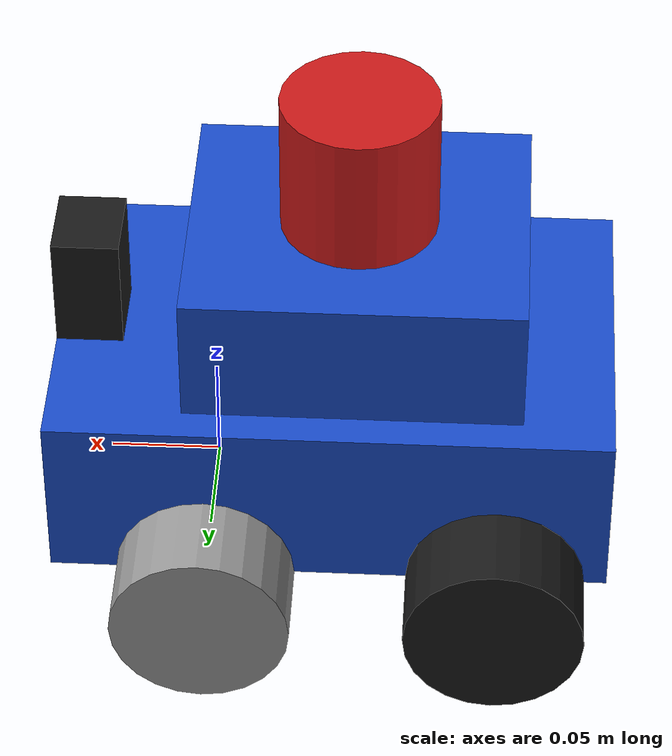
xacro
<?xml version="1.0"?>

<robot name="kasif_celebi" xmlns:xacro="http://www.ros.org/wiki/xacro">

  <xacro:include filename="$(find robot_description)/urdf/materials.xacro"/>
  <xacro:include filename="$(find robot_description)/urdf/chassis.xacro"/>
  <xacro:include filename="$(find robot_description)/urdf/lidar.xacro"/>
  <xacro:include filename="$(find robot_description)/urdf/imu.xacro"/>
  <xacro:include filename="$(find robot_description)/urdf/rgb_camera.xacro"/>
  <xacro:include filename="$(find robot_description)/urdf/wheel.xacro"/>

</robot>

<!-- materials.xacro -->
<!--
Amaç: Robot parçalarının ortak renk malzemelerini tanımlar.
Çalışma: Diğer Xacro dosyaları burada adlandırılan RGBA malzemelerini visual
öğelerinde kullanarak modelin renklerini belirler.
-->

<robot xmlns:xacro="http://www.ros.org/wiki/xacro">

  <material name="blue">
    <color rgba="0.1 0.3 0.8 1.0"/>
  </material>

  <material name="black">
    <color rgba="0.1 0.1 0.1 1.0"/>
  </material>

  <material name="gray">
    <color rgba="0.6 0.6 0.6 1.0"/>
  </material>

  <material name="dark_gray">
    <color rgba="0.3 0.3 0.3 1.0"/>
  </material>

  <material name="red">
    <color rgba="0.8 0.1 0.1 1.0"/>
  </material>

</robot>

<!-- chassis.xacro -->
<robot xmlns:xacro="http://www.ros.org/wiki/xacro">
 <link name= "base_link">

 </link>

 <joint name="chassis_joint" type="fixed">
   <parent link="base_link"/>
   <child link="chassis"/>
   <origin xyz="0.07 0 0"/>
  </joint>

  <link name="chassis">
   <visual>
    <origin xyz="-0.125 0 0.04"/>
     <geometry>
       <box size="0.250 0.16 0.08"/>
     </geometry>
     <material name="blue"/>
   </visual>

   <collision>
     <origin xyz="-0.125 0 0.04"/>
     <geometry>
       <box size="0.250 0.16 0.08"/>
     </geometry>
   </collision>

  </link>

  <gazebo reference="chassis">
    <material>Gazebo/Blue</material>
  </gazebo>

             <!--Up Chassis-->
 <joint name="up_chassis_joint" type="fixed">
   <parent link="chassis"/>
   <child link="up_chassis"/>
   <origin xyz=" -0.135 0 0.11"/>
  </joint>

  <link name="up_chassis">
   <visual>
     <geometry>
       <box size="0.15 0.13 0.06"/>
     </geometry>
     <material name="blue"/>
   </visual>

   <collision>
     <geometry>
       <box size="0.15 0.13 0.06"/>
     </geometry>
   </collision>

  </link>

  <gazebo reference="up_chassis">
    <material>Gazebo/Blue</material>
  </gazebo>

   <!--Base_footprint Link-->
  <joint name="base_footprint_joint" type="fixed">
   <parent link="base_link"/>
   <child link="base_footprint"/>
   <origin xyz=" 0 0 0"/>
  </joint>

  <link name="base_footprint"></link>

 </robot>

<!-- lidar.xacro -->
<robot xmlns:xacro="http://www.ros.org/wiki/xacro">

  <joint name="laser_joint" type="fixed">
    <parent link="up_chassis"/>
    <child link="laser_frame"/>
    <origin xyz="0 0 0.0625" rpy="0 0 0"/>
  </joint>

  <link name = "laser_frame">
    <visual>
      <geometry>
        <cylinder radius="0.035" length="0.065"/>
      </geometry>
      <material name="red"/>
    </visual>

    <collision>
      <geometry>
        <cylinder radius="0.035" length="0.065"/>
      </geometry>
    </collision>

  </link>

    <gazebo reference="laser_frame">
      <sensor name="laser" type="gpu_lidar">
        <pose>0 0 0 0 0 0</pose>
        <always_on>true</always_on>
        <update_rate>30</update_rate>
        <visualize>true</visualize>
        <topic>scan</topic>
        <gz_frame_id>laser_frame</gz_frame_id>

        <ray>
          <scan>
            <horizontal>
              <samples>360</samples>
              <resolution>1</resolution>
              <min_angle>-3.14159</min_angle>
              <max_angle>3.14159</max_angle>
            </horizontal>
            <vertical>
              <samples>1</samples>
              <resolution>1</resolution>
              <min_angle>0.0</min_angle>
              <max_angle>0.0</max_angle>
            </vertical>
          </scan>

          <range>
            <min>0.3</min>
            <max>12</max>
            <resolution>0.01</resolution>
          </range>
        </ray>
      </sensor>
    </gazebo>

</robot>

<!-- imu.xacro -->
<robot xmlns:xacro="http://www.ros.org/wiki/xacro">

  <joint name="imu_joint" type="fixed">
    <parent link="chassis"/>
    <child link="imu_link"/>
    <origin xyz="-0.07 0 0.01" rpy="0 0 0"/>
  </joint>

  <link name="imu_link"></link>

  <gazebo reference="imu_link">
  <sensor name="imu_sensor" type="imu">
    <always_on>true</always_on>
    <update_rate>100</update_rate>
    <topic>imu</topic>
    <visualize>true</visualize>
  </sensor>
</gazebo>

</robot>

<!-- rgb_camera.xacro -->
<robot xmlns:xacro="http://www.ros.org/wiki/xacro">

  <joint name="camera_joint" type="fixed">
    <parent link="chassis"/>
    <child link="camera_frame"/>
    <origin xyz="-0.015 0 0.1065" rpy="0 ${-pi/2} ${pi/2}"/>
  </joint>
<!--!rpy="0 ${-pi/2} ${pi/2} -->
  <link name="camera_frame">
    <visual>
      <geometry>
        <box size="0.053 0.03 0.036"/>
      </geometry>
      <material name="black"/>
    </visual>

    <collision>
      <geometry>
        <box size="0.053 0.03 0.036"/>
      </geometry>
    </collision>

  </link>

  <joint name="camera_optical_joint" type="fixed">
    <parent link="camera_frame"/>
    <child link="camera_link_optical"/>
    <origin xyz="0 0 0" rpy="${-pi/2} 0 ${-pi/2}"/>
  </joint>

  <link name="camera_link_optical"/>

  <gazebo reference="camera_frame">
    <material>Gazebo/Black</material>
  </gazebo>

  <gazebo reference="camera_link_optical">
    <sensor name="rgb_camera" type="camera">
      <always_on>true</always_on>
      <update_rate>30</update_rate>
      <visualize>true</visualize>
      <topic>camera</topic>

      <camera>
        <horizontal_fov>1.047</horizontal_fov>
        <image>
          <width>640</width>
          <height>480</height>
          <format>R8G8B8</format>
        </image>
        <clip>
          <near>0.05</near>
          <far>8.0</far>
        </clip>
      </camera>
    </sensor>
  </gazebo>

</robot>

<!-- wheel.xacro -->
<robot xmlns:xacro="http://www.ros.org/wiki/xacro">

<!--sol on teker-->

<joint name="left_front_wheel_joint" type="continuous">
  <parent link="base_link"/>
  <child link="left_front_wheel"/>
  <origin xyz="0 0.1 0" rpy="-${pi/2} 0 0"/>
  <axis xyz="0 0 1"/>
</joint>

<link name="left_front_wheel">
  <visual>
    <origin xyz="0 0 0"/>
    <geometry>
      <cylinder radius="0.04" length="0.04"/>
    </geometry>
    <material name="gray"/>
  </visual>

  <collision>
    <origin xyz="0 0 0"/>
    <geometry>
      <cylinder radius="0.04" length="0.04"/>
    </geometry>
    <material name="gray"/>
  </collision>

</link>
<gazebo reference="left_front_wheel">
    <material>Gazebo/Gray</material>
  </gazebo>

<!--sol arka teker-->

<joint name="left_rear_wheel_joint" type="continuous">
  <parent link="base_link"/>
  <child link="left_rear_wheel"/>
  <origin xyz="-0.13 0.1 0" rpy="-${pi/2} 0 0"/>
  <axis xyz="0 0 1"/>
</joint>

<link name="left_rear_wheel">
  <visual>
    <origin xyz="0 0 0"/>
    <geometry>
      <cylinder radius="0.04" length="0.04"/>
    </geometry>
    <material name="black"/>
  </visual>

  <collision>
    <origin xyz="0 0 0"/>
    <geometry>
      <cylinder radius="0.04" length="0.04"/>
    </geometry>
    <material name="black"/>
  </collision >

</link>

  <gazebo reference="left_rear_wheel">
    <mu1>0.01</mu1>
    <mu2>0.01</mu2>
    <kp>1000000.0</kp>
    <kd>1.0</kd>
    <material>Gazebo/Black</material>
  </gazebo>
<!--sağ on teker-->

<joint name="right_front_wheel_joint" type="continuous">
  <parent link="base_link"/>
  <child link="right_front_wheel"/>
  <origin xyz="0 -0.1 0" rpy="${pi/2} 0 0"/>
  <axis xyz="0 0 -1"/>
</joint>

<link name="right_front_wheel">
  <visual>
    <origin xyz="0 0 0"/>
    <geometry>
      <cylinder radius="0.04" length="0.04"/>
    </geometry>
    <material name="gray"/>
  </visual>

  <collision>
    <origin xyz="0 0 0"/>
    <geometry>
      <cylinder radius="0.04" length="0.04"/>
    </geometry>
    <material name="gray"/>
  </collision>

</link>
 <gazebo reference="right_front_wheel">
    <material>Gazebo/Gray</material>
  </gazebo>

<!--sağ arka teker-->

<joint name="right_rear_wheel_joint" type="continuous">
  <parent link="base_link"/>
  <child link="right_rear_wheel"/>
  <origin xyz="-0.13 -0.1 0" rpy="${pi/2} 0 0"/>
  <axis xyz="0 0 -1"/>
</joint>

<link name="right_rear_wheel">
  <visual>
    <origin xyz="0 0 0"/>
    <geometry>
      <cylinder radius="0.04" length="0.04"/>
    </geometry>
    <material name="black"/>
  </visual>

  <collision>
    <origin xyz="0 0 0"/>
    <geometry>
      <cylinder radius="0.04" length="0.04"/>
    </geometry>
    <material name="black"/>
  </collision>
</link>

  <gazebo reference="right_rear_wheel">
    <mu1>0.01</mu1>
    <mu2>0.01</mu2>
    <kp>1000000.0</kp>
    <kd>1.0</kd>
    <material>Gazebo/Black</material>
  </gazebo>

</robot>
